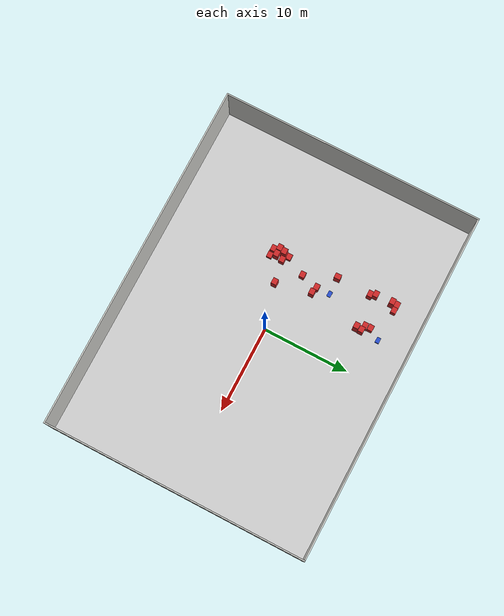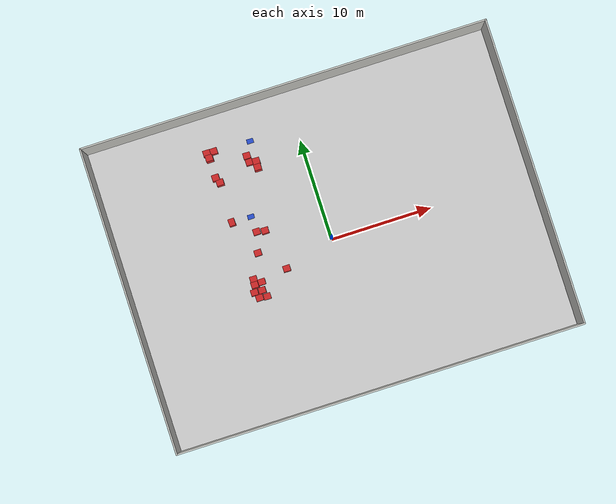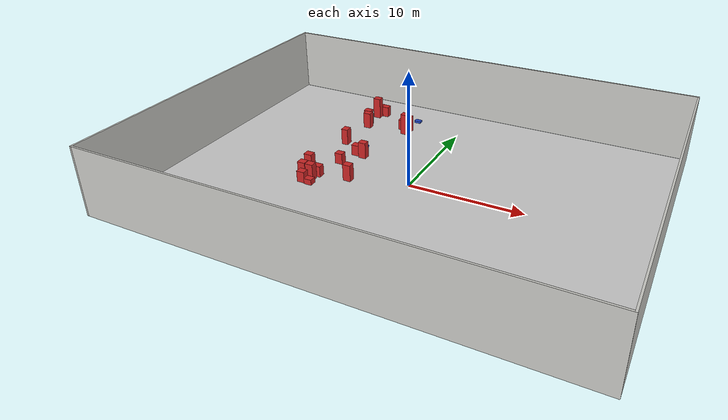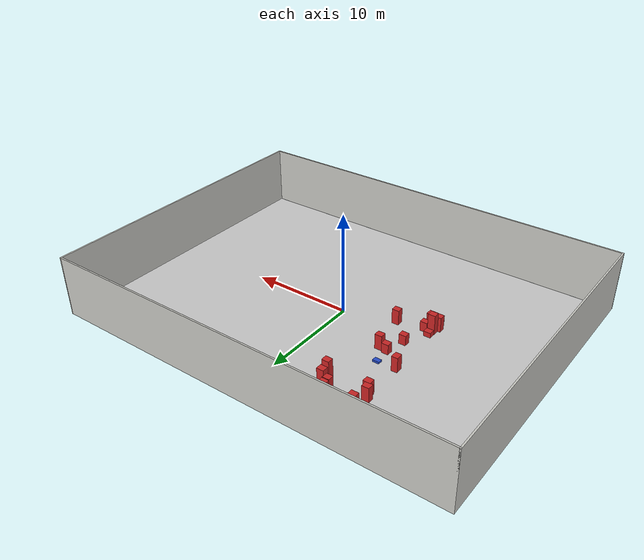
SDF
<sdf version="1.6">
 <world name="default">
  <include><uri>model://sun</uri></include>
  <include><uri>model://factory_floor</uri></include>
  <include><uri>model://factory_outer_frame</uri></include>
  <model name="baggage_A_1.5_0">
   <include><uri>model://baggage_A_1.5</uri><pose>-8.61221 -2.63519 0.75 0 0 0</pose></include>
  </model>
  <model name="baggage_A_2.0_0">
   <include><uri>model://baggage_A_2.0</uri><pose>-8.35893 -1.97275 1.0 0 0 0</pose></include>
  </model>
  <model name="baggage_A_1.5_1">
   <include><uri>model://baggage_A_1.5</uri><pose>-7.85129 -2.65398 0.75 0 0 0</pose></include>
  </model>
  <model name="baggage_A_1.0_0">
   <include><uri>model://baggage_A_1.0</uri><pose>-8.31175 -3.25848 0.5 0 0 0</pose></include>
  </model>
  <model name="baggage_A_0.5_0">
   <include><uri>model://baggage_A_0.5</uri><pose>-7.5788 -3.33237 0.25 0 0 0</pose></include>
  </model>
  <model name="baggage_A_1.0_1">
   <include><uri>model://baggage_A_1.0</uri><pose>-7.65243 -1.86558 0.5 0 0 0</pose></include>
  </model>
  <model name="baggage_A_0.5_1">
   <include><uri>model://baggage_A_0.5</uri><pose>-8.34132 -1.36306 0.25 0 0 0</pose></include>
  </model>
  <model name="baggage_B_0.2_0">
   <include><uri>model://baggage_B_0.2</uri><pose>-6.74852 4.44977 0.1 0 0 0</pose></include>
  </model>
  <model name="baggage_A_1.5_2">
   <include><uri>model://baggage_A_1.5</uri><pose>-8.64201 4.41438 0.75 0 0 -1.53905</pose></include>
  </model>
  <model name="baggage_A_1.0_2">
   <include><uri>model://baggage_A_1.0</uri><pose>-6.65161 2.86872 0.5 0 0 0</pose></include>
  </model>
  <model name="baggage_A_1.5_3">
   <include><uri>model://baggage_A_1.5</uri><pose>-5.8568 2.70544 0.75 0 0 0</pose></include>
  </model>
  <model name="baggage_A_1.0_3">
   <include><uri>model://baggage_A_1.0</uri><pose>-7.16226 0.892479 0.5 0 0 0</pose></include>
  </model>
  <model name="baggage_A_1.5_4">
   <include><uri>model://baggage_A_1.5</uri><pose>-4.97836 -1.38674 0.75 0 0 0</pose></include>
  </model>
  <model name="baggage_A_1.5_5">
   <include><uri>model://baggage_A_1.5</uri><pose>-8.5559 8.3985 0.75 0 0 0</pose></include>
  </model>
  <model name="baggage_A_1.5_6">
   <include><uri>model://baggage_A_1.5</uri><pose>-8.82889 8.96758 0.75 0 0 0</pose></include>
  </model>
  <model name="baggage_A_2.0_2">
   <include><uri>model://baggage_A_2.0</uri><pose>-4.67828 8.67706 1.0 0 0 0</pose></include>
  </model>
  <model name="baggage_A_1.5_7">
   <include><uri>model://baggage_A_1.5</uri><pose>-4.63443 9.31807 0.75 0 0 0</pose></include>
  </model>
  <model name="baggage_A_1.0_4">
   <include><uri>model://baggage_A_1.0</uri><pose>-5.29254 9.45258 0.5 0 0 0</pose></include>
  </model>
  <model name="baggage_A_1.0_5">
   <include><uri>model://baggage_A_1.0</uri><pose>-5.34102 10.1152 0.5 0 0 0</pose></include>
  </model>
  <model name="baggage_A_2.0_1">
   <include><uri>model://baggage_A_2.0</uri><pose>-8.82731 10.9016 1.0 0 0 0</pose></include>
  </model>
  <model name="baggage_A_1.0_6">
   <include><uri>model://baggage_A_1.0</uri><pose>-8.93609 11.5054 0.5 0 0 0</pose></include>
  </model>
  <model name="baggage_A_1.0_7">
   <include><uri>model://baggage_A_1.0</uri><pose>-8.23678 11.4882 0.5 0 0 0</pose></include>
  </model>
  <model name="baggage_B_0.2_1">
   <include><uri>model://baggage_B_0.2</uri><pose>-4.61348 11.4226 0.1 0 0 0</pose></include>
  </model>
 </world>
</sdf>

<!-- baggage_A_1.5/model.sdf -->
<sdf version='1.4'>
  <model name="baggage_A_1.5">
      <static>true</static>
      <link name="link">
         <collision name="collision">
            <geometry>
               <box>
                  <size>0.7 0.6 1.5</size>
               </box>
            </geometry>
         </collision>
         <visual name="visual">
            <cast_shadows>false</cast_shadows>
            <geometry>
               <box>
                  <size>0.7 0.6 1.5</size>
               </box>
            </geometry>
            <material>
               <script>
                  <uri>file://media/materials/scripts/gazebo.material</uri>
                  <name>Gazebo/Red</name>
               </script>
            </material>
         </visual>
      </link>
  </model>
</sdf>

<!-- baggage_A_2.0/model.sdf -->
<sdf version='1.4'>
  <model name="baggage_A_2.0">
      <static>true</static>
      <link name="link">
         <collision name="collision">
            <geometry>
               <box>
                  <size>0.7 0.6 2.0</size>
               </box>
            </geometry>
         </collision>
         <visual name="visual">
            <cast_shadows>false</cast_shadows>
            <geometry>
               <box>
                  <size>0.7 0.6 2.0</size>
               </box>
            </geometry>
            <material>
               <script>
                  <uri>file://media/materials/scripts/gazebo.material</uri>
                  <name>Gazebo/Red</name>
               </script>
            </material>
         </visual>
      </link>
  </model>
</sdf>

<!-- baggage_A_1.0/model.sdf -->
<sdf version='1.4'>
  <model name="baggage_A_1.0">
      <static>true</static>
      <link name="link">
         <collision name="collision">
            <geometry>
               <box>
                  <size>0.7 0.6 1.0</size>
               </box>
            </geometry>
         </collision>
         <visual name="visual">
            <cast_shadows>false</cast_shadows>
            <geometry>
               <box>
                  <size>0.7 0.6 1.0</size>
               </box>
            </geometry>
            <material>
               <script>
                  <uri>file://media/materials/scripts/gazebo.material</uri>
                  <name>Gazebo/Red</name>
               </script>
            </material>
         </visual>
      </link>
  </model>
</sdf>

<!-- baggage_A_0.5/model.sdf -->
<sdf version='1.4'>
  <model name="baggage_A_0.5">
      <static>true</static>
      <link name="link">
         <collision name="collision">
            <geometry>
               <box>
                  <size>0.7 0.6 0.5</size>
               </box>
            </geometry>
         </collision>
         <visual name="visual">
            <cast_shadows>false</cast_shadows>
            <geometry>
               <box>
                  <size>0.7 0.6 0.5</size>
               </box>
            </geometry>
            <material>
               <script>
                  <uri>file://media/materials/scripts/gazebo.material</uri>
                  <name>Gazebo/Red</name>
               </script>
            </material>
         </visual>
      </link>
  </model>
</sdf>

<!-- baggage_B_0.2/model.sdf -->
<sdf version='1.4'>
  <model name="baggage_B_0.2">
      <static>true</static>
      <link name="link">
         <collision name="collision">
            <geometry>
               <box>
                  <size>0.65 0.45 0.2</size>
               </box>
            </geometry>
         </collision>
         <visual name="visual">
            <cast_shadows>false</cast_shadows>
            <geometry>
               <box>
                  <size>0.65 0.45 0.2</size>
               </box>
            </geometry>
            <material>
               <script>
                  <uri>file://media/materials/scripts/gazebo.material</uri>
                  <name>Gazebo/Blue</name>
               </script>
            </material>
         </visual>
      </link>
  </model>
</sdf>

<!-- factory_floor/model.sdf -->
<sdf version="1.4">
   <model name="factory_floor">
      <static>true</static>
      <link name="link">
         <collision name="collision">
            <geometry>
               <plane>
                  <normal>0 0 1</normal>
                  <size>40 30</size>
               </plane>
            </geometry>
            <surface>
               <friction>
                  <ode>
                     <mu>100</mu>
                     <mu2>50</mu2>
                  </ode>
               </friction>
            </surface>
         </collision>
         <visual name="visual">
            <cast_shadows>false</cast_shadows>
            <geometry>
               <plane>
                  <normal>0 0 1</normal>
                  <size>40 30</size>
               </plane>
            </geometry>
            <material>
               <script>
                  <uri>model://factory_floor/materials/scripts/factory_floor.material</uri>
                  <name>FactoryFloor/Image</name>
               </script>
            </material>
         </visual>
      </link>
   </model>
</sdf>

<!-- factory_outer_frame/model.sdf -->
<sdf version='1.6'>
  <model name='factory_outer_frame'>
    <pose frame=''>0 0 0 0 -0 0</pose>
    <link name='Wall_0'>
      <collision name='Wall_0_Collision'>
        <geometry>
          <box>
            <size>30.15 0.15 6</size>
          </box>
        </geometry>
        <pose frame=''>0 0 3 0 -0 0</pose>
      </collision>
      <visual name='Wall_0_Visual'>
        <cast_shadows>false</cast_shadows>
        <pose frame=''>0 0 3 0 -0 0</pose>
        <geometry>
          <box>
            <size>30.15 0.15 6</size>
          </box>
        </geometry>
        <material>
          <script>
            <uri>file://media/materials/scripts/gazebo.material</uri>
            <name>Gazebo/CeilingTiled</name>
          </script>
          <ambient>1 1 1 1</ambient>
        </material>
      </visual>
      <pose frame=''>20 0 0 0 0 -1.5708</pose>
    </link>
    <link name='Wall_1'>
      <collision name='Wall_1_Collision'>
        <geometry>
          <box>
            <size>40.15 0.15 6</size>
          </box>
        </geometry>
        <pose frame=''>0 0 3 0 -0 0</pose>
      </collision>
      <visual name='Wall_1_Visual'>
        <cast_shadows>false</cast_shadows>
        <pose frame=''>0 0 3 0 -0 0</pose>
        <geometry>
          <box>
            <size>40.15 0.15 6</size>
          </box>
        </geometry>
        <material>
          <script>
            <uri>file://media/materials/scripts/gazebo.material</uri>
            <name>Gazebo/CeilingTiled</name>
          </script>
          <ambient>1 1 1 1</ambient>
        </material>
      </visual>
      <pose frame=''>0 -15 0 0 -0 3.14159</pose>
    </link>
    <link name='Wall_2'>
      <collision name='Wall_2_Collision'>
        <geometry>
          <box>
            <size>30.15 0.15 6</size>
          </box>
        </geometry>
        <pose frame=''>0 0 3 0 -0 0</pose>
      </collision>
      <visual name='Wall_2_Visual'>
        <cast_shadows>false</cast_shadows>
        <pose frame=''>0 0 3 0 -0 0</pose>
        <geometry>
          <box>
            <size>30.15 0.15 6</size>
          </box>
        </geometry>
        <material>
          <script>
            <uri>file://media/materials/scripts/gazebo.material</uri>
            <name>Gazebo/CeilingTiled</name>
          </script>
          <ambient>1 1 1 1</ambient>
        </material>
      </visual>
      <pose frame=''>-20 0 0 0 -0 1.5708</pose>
    </link>
    <link name='Wall_3'>
      <collision name='Wall_3_Collision'>
        <geometry>
          <box>
            <size>40.15 0.15 6</size>
          </box>
        </geometry>
        <pose frame=''>0 0 3 0 -0 0</pose>
      </collision>
      <visual name='Wall_3_Visual'>
        <cast_shadows>false</cast_shadows>
        <pose frame=''>0 0 3 0 -0 0</pose>
        <geometry>
          <box>
            <size>40.15 0.15 6</size>
          </box>
        </geometry>
        <material>
          <script>
            <uri>file://media/materials/scripts/gazebo.material</uri>
            <name>Gazebo/CeilingTiled</name>
          </script>
          <ambient>1 1 1 1</ambient>
        </material>
      </visual>
      <pose frame=''>0 15 0 0 -0 0</pose>
    </link>
    <static>1</static>
  </model>
</sdf>
